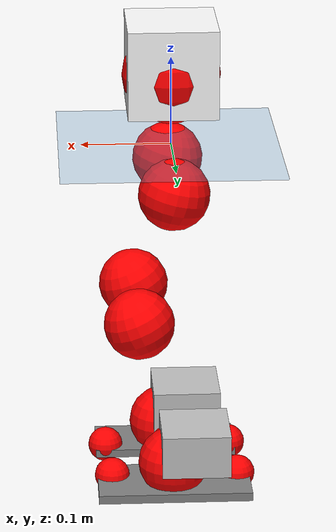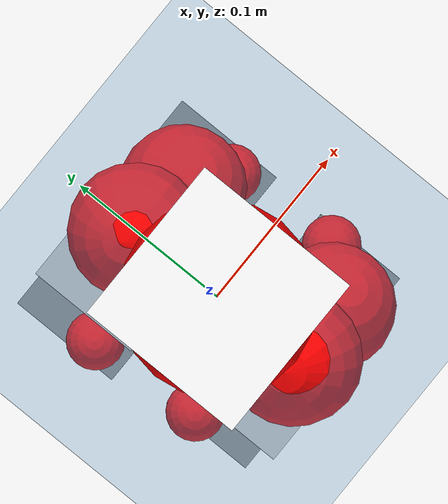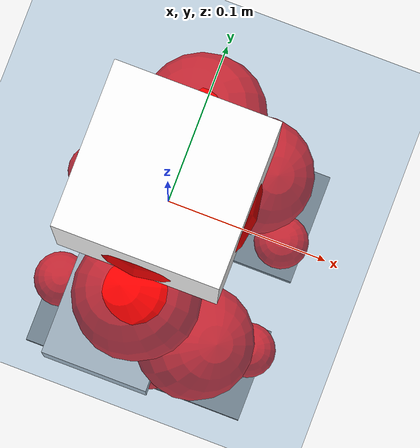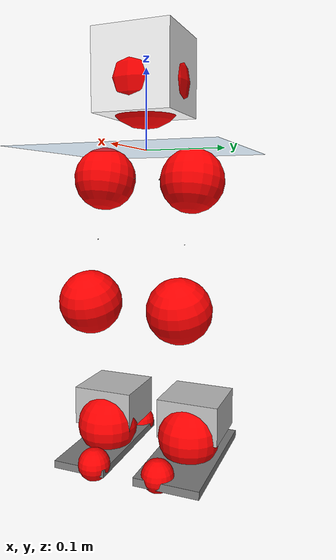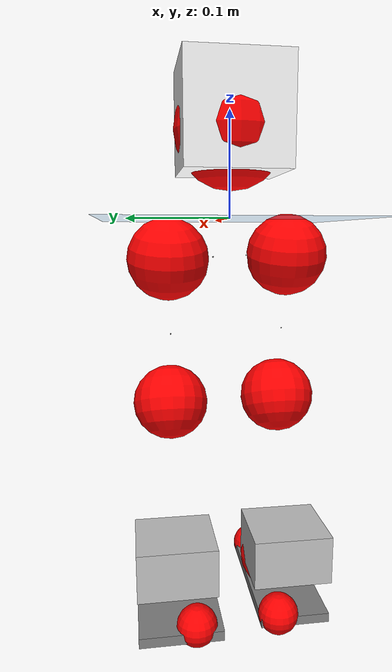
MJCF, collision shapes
<mujoco model="pi_12dof_release_v1">
  <compiler angle="radian" assetdir="assets" balanceinertia="true" inertiafromgeom="false"/>

  <option timestep="0.005" density="1.2" viscosity="2e-05"/>

  <size nkey="1"/>

  <visual>
    <quality shadowsize="8192"/>
    <map shadowclip="0.5"/>
  </visual>

  <default>
    <default class="/">
      <joint armature="0.01" damping="0.01" frictionloss="0.01"/>
      <geom contype="0" conaffinity="0" group="1" solref="-1000 -80"/>
      <site size="0.01 0.005 0.005" group="5"/>
      <general forcelimited="true" biastype="affine" gainprm="20" biasprm="0 -20 -0.5"/>
      <default class="foot">
        <geom size="0.0845 0.036 0.005" type="box" condim="6" group="4" priority="1" friction="0.9 0.2 0.2" solimp="0.015 1 0.005"/>
      </default>
      <default class="reward_collision_sphere">
        <geom group="5" rgba="1 0 0 1"/>
      </default>
    </default>
  </default>

  <asset>
    <texture type="skybox" colorspace="auto" name="//unnamed_texture_0" builtin="gradient" rgb1="0.95 0.95 0.95" rgb2="0.95 0.95 0.95" width="100" height="600"/>
    <texture type="2d" colorspace="auto" name="texplane" builtin="checker" rgb1="0.345 0.575 0.748" rgb2="0.345 0.575 0.748" markrgb="1 1 1" width="512" height="512"/>
    <material name="MatPlane" class="/" texture="texplane" texuniform="true" texrepeat="2 2" specular="0.9"/>
    <mesh name="baselink_1" class="/" file="baselink_1.STL"/>
    <mesh name="r_hip_pitch_link" class="/" file="r_hip_pitch_link.STL"/>
    <mesh name="r_hip_roll_link" class="/" file="r_hip_roll_link.STL"/>
    <mesh name="r_thigh_link" class="/" file="r_thigh_link.STL"/>
    <mesh name="r_calf_link" class="/" file="r_calf_link.STL"/>
    <mesh name="r_ankle_pitch_link" class="/" file="r_ankle_pitch_link.STL"/>
    <mesh name="r_ankle_roll_link" class="/" file="r_ankle_roll_link.STL"/>
    <mesh name="l_hip_pitch_link" class="/" file="l_hip_pitch_link.STL"/>
    <mesh name="l_hip_roll_link" class="/" file="l_hip_roll_link.STL"/>
    <mesh name="l_thigh_link" class="/" file="l_thigh_link.STL"/>
    <mesh name="l_calf_link" class="/" file="l_calf_link.STL"/>
    <mesh name="l_ankle_pitch_link" class="/" file="l_ankle_pitch_link.STL"/>
    <mesh name="l_ankle_roll_link" class="/" file="l_ankle_roll_link.STL"/>
  </asset>

  <worldbody>
    <geom name="floor" class="/" size="100 100 0.125" type="plane" group="0" material="MatPlane"/>
    <light name="toplight_shadow" class="/" pos="0 0 5" dir="0.0990148 0.0990148 -0.990148" type="directional" ambient="0.04 0.04 0.04" diffuse="0.55 0.55 0.55" specular="0.12 0.12 0.12"/>
    <light name="toplight_fill" class="/" pos="0 0 5" dir="0.0990148 0.0990148 -0.990148" type="directional" castshadow="false" ambient="0.04 0.04 0.04" diffuse="0.3 0.3 0.3" specular="0.08 0.08 0.08"/>
    <body name="trunk" pos="-0.000172404 -0.00108142 0.000545516" quat="1 8.57142e-06 2.67999e-05 -1.12797e-05">
      <inertial pos="0.001376 -0.00214427 0.0459898" quat="0.695888 0.0202711 0.00296725 0.717858" mass="2.12095" diaginertia="0.0134684 0.0026254 0.00809336"/>
      <joint name="//unnamed_joint_0" type="free"/>
      <geom name="//unnamed_geom_1" class="/" type="mesh" density="0" rgba="1 1 1 1" mesh="baselink_1"/>
      <geom name="//unnamed_geom_2" class="/" size="0.0497976 0.0497976 0.0497976" pos="0 0 0.091431" type="box" rgba="1 1 1 1"/>
      <geom name="//unnamed_geom_3" class="reward_collision_sphere" size="0.0547774" pos="0 0 0.0800021"/>
      <site name="imu" class="/" pos="0.00457712 -0.00148472 -0.00535438" size="0.00995953"/>
      <camera name="track" class="/" pos="0 -1.5612 0" quat="0.707107 0.707107 0 0" mode="trackcom"/>
      <camera name="ego_camera" class="/" pos="0.0798278 0 0.20572" quat="-0.5 -0.5 0.5 0.5"/>
      <body name="r_hip_pitch_link" pos="0.000110187 -0.0152721 -0.0354999" quat="0.99221 0.000329603 -0.124572 -0.000448521">
        <inertial pos="0.000677513 -0.0438425 -0.000233283" quat="-0.0212097 0.704902 -0.0288471 0.7084" mass="0.361966" diaginertia="0.000148116 2.80386e-05 0.000163157"/>
        <joint name="r_hip_pitch_joint" class="/" pos="0 0 0" axis="-0.00567492 -0.999976 0.00405386" stiffness="0.000589059" range="-1.74525 1.25619" armature="0.00980648" damping="0.0146351" frictionloss="0.0102862"/>
        <geom name="//unnamed_geom_4" class="/" type="mesh" density="0" rgba="0.75294 0.75294 0.75294 1" mesh="r_hip_pitch_link"/>
        <geom name="//unnamed_geom_5" class="/" size="0.000497976 0.000497976 0.000497976" type="box" rgba="0.75294 0.75294 0.75294 1"/>
        <body name="r_hip_roll_link" pos="0.00091416 -0.0409989 -0.000172272" quat="1 6.87628e-05 0.00023305 0.000310311">
          <inertial pos="-0.000117521 -0.000298927 -0.0695725" quat="0.708777 -0.0795839 -0.0895742 0.695182" mass="0.384369" diaginertia="0.000460849 8.06633e-05 0.000254057"/>
          <joint name="r_hip_roll_joint" class="/" pos="0 0 0" axis="-1 -7.64904e-05 -0.000398591" stiffness="0.00260762" range="-0.114413 0.52436" armature="0.00975008" damping="0.00610007" frictionloss="0.0097598"/>
          <geom name="//unnamed_geom_6" class="/" type="mesh" density="0" rgba="0.75294 0.75294 0.75294 1" mesh="r_hip_roll_link"/>
          <geom name="//unnamed_geom_7" class="/" size="0.000497976 0.000497976 0.000497976" type="box" rgba="0.75294 0.75294 0.75294 1"/>
          <geom name="//unnamed_geom_8" class="reward_collision_sphere" size="0.0398381"/>
          <body name="r_thigh_link" pos="0.000405898 -0.00135831 -0.0789839" quat="1 2.7819e-05 8.08147e-05 2.48101e-05">
            <inertial pos="0.00105355 0.000746409 -0.056612" quat="0.73737 0.675488 -0.000484834 0.000843775" mass="0.110888" diaginertia="0.000168869 2.82338e-05 0.000109882"/>
            <joint name="r_thigh_joint" class="/" pos="0 0 0" axis="0.00111027 -0.00261546 -0.999996" range="-0.312812 0.596644" armature="0.0104154" damping="0.0069546" frictionloss="0.0098407"/>
            <geom name="//unnamed_geom_9" class="/" type="mesh" density="0" rgba="0.75294 0.75294 0.75294 1" mesh="r_thigh_link"/>
            <geom name="//unnamed_geom_10" class="/" size="0.000497976 0.000497976 0.000497976" type="box" rgba="0.75294 0.75294 0.75294 1"/>
            <body name="r_calf_link" pos="-0.000526938 -0.000799021 -0.0802435" quat="0.947614 -5.5072e-05 0.319417 -1.14375e-05">
              <inertial pos="0.000629341 -0.00139936 -0.08037" quat="0.999991 -0.00222725 0.000701557 0.00347048" mass="0.791435" diaginertia="0.00489965 0.000989265 0.000347933"/>
              <joint name="r_calf_joint" class="/" pos="0 0 0" axis="3.1898e-05 -1 -0.0003054" range="-1.60131 0.637578" armature="0.0103003" damping="0.00979749" frictionloss="0.00963147"/>
              <geom name="//unnamed_geom_11" class="/" type="mesh" density="0" rgba="0.75294 0.75294 0.75294 1" mesh="r_calf_link"/>
              <geom name="//unnamed_geom_12" class="/" size="0.000497976 0.000497976 0.000497976" type="box" rgba="0.75294 0.75294 0.75294 1"/>
              <geom name="//unnamed_geom_13" class="reward_collision_sphere" size="0.0398381"/>
              <body name="r_ankle_pitch_link" pos="0.00259757 0.00285495 -0.1607" quat="0.979971 -5.12958e-05 -0.199138 -6.91203e-05">
                <inertial pos="0.00561541 0.000446697 -0.000714224" quat="0.00190545 0.707227 -0.00197032 0.706981" mass="0.178348" diaginertia="0.000430664 6.55104e-05 0.000240899"/>
                <joint name="r_ankle_pitch_joint" class="/" pos="0 0 0" axis="0.0103973 -0.999926 -0.00630691" range="-1.31296 0.543732" armature="0.0100559" damping="0.0108373" frictionloss="0.0104746"/>
                <geom name="//unnamed_geom_14" class="/" type="mesh" density="0" rgba="0.75294 0.75294 0.75294 1" mesh="r_ankle_pitch_link"/>
                <geom name="//unnamed_geom_15" class="/" size="0.0388422 0.0398381 0.0248988" type="box" rgba="0.75294 0.75294 0.75294 1"/>
                <body name="r_ankle_roll_link" pos="0.0789842 0.00205511 -0.000475388" quat="1 -0.000136544 0.000173015 -0.000852374">
                  <inertial pos="-0.0264283 -0.000173311 -0.016126" quat="0.559923 0.430689 0.434157 0.559018" mass="0.515298" diaginertia="0.0015352 0.000299179 0.000544959"/>
                  <joint name="r_ankle_roll_joint" class="/" pos="0 0 0" axis="-1 1.03265e-06 2.20936e-05" range="-0.196757 0.145449" armature="0.00990084" damping="0.0136938" frictionloss="0.0102504"/>
                  <geom name="//unnamed_geom_16" class="/" type="mesh" density="0" rgba="0.75294 0.75294 0.75294 1" mesh="r_ankle_roll_link"/>
                  <geom name="//unnamed_geom_17" class="/" type="mesh" rgba="0.75294 0.75294 0.75294 1" mesh="r_ankle_roll_link"/>
                  <geom name="right_foot" class="foot" size="0.0814959 0.0339823 0.00459568" pos="-0.0542829 0 -0.050287"/>
                  <geom name="//unnamed_geom_19" class="reward_collision_sphere" size="0.0398381" pos="-0.0532185 0 -0.0228577"/>
                  <geom name="//unnamed_geom_20" class="reward_collision_sphere" size="0.0199191" pos="0.0159656 0.015612 -0.0457155"/>
                  <geom name="//unnamed_geom_21" class="reward_collision_sphere" size="0.0199191" pos="-0.127724 0.015612 -0.0457155"/>
                  <site name="right_foot" class="foot" pos="-0.0542829 0 -0.050287" size="0.00995953"/>
                </body>
              </body>
            </body>
          </body>
        </body>
      </body>
      <body name="l_hip_pitch_link" pos="-0.000767327 0.0177342 -0.0370907" quat="0.992162 0.00043103 -0.124954 -0.000104449">
        <inertial pos="0.000555939 0.0404056 -0.00103819" quat="-0.0344268 0.704546 0.0296116 0.708204" mass="0.37606" diaginertia="0.000173616 3.01024e-05 0.00019398"/>
        <joint name="l_hip_pitch_joint" class="/" pos="0 0 0" axis="0.00130027 0.999998 0.00162604" stiffness="0.00209856" range="-1.24421 1.75518" armature="0.00980459" damping="0" frictionloss="0.0101404"/>
        <geom name="//unnamed_geom_22" class="/" type="mesh" density="0" rgba="0.75294 0.75294 0.75294 1" mesh="l_hip_pitch_link"/>
        <geom name="//unnamed_geom_23" class="/" size="0.000497976 0.000497976 0.000497976" type="box" rgba="0.75294 0.75294 0.75294 1"/>
        <body name="l_hip_roll_link" pos="0.000344956 0.0437954 -0.00210338" quat="1 -3.60865e-05 0.000151374 8.74268e-06">
          <inertial pos="-0.00102139 -0.000581491 -0.0720306" quat="0.698746 -0.0757203 -0.0773328 0.707135" mass="0.390521" diaginertia="0.000453566 7.84665e-05 0.000245656"/>
          <joint name="l_hip_roll_joint" class="/" pos="0 0 0" axis="-0.999995 0.00159877 0.00264733" range="-0.543905 0.112641" armature="0.0106188" damping="0.00600561" frictionloss="0.00944618"/>
          <geom name="//unnamed_geom_24" class="/" type="mesh" density="0" rgba="0.75294 0.75294 0.75294 1" mesh="l_hip_roll_link"/>
          <geom name="//unnamed_geom_25" class="/" size="0.000497976 0.000497976 0.000497976" type="box" rgba="0.75294 0.75294 0.75294 1"/>
          <geom name="//unnamed_geom_26" class="reward_collision_sphere" size="0.0398381"/>
          <body name="l_thigh_link" pos="-7.05413e-05 -0.0027674 -0.0789822" quat="1 -0.00012136 5.62712e-05 0.000252954">
            <inertial pos="0.000405415 -0.00156032 -0.0536081" quat="0.674759 0.738038 -0.000666136 0.000552313" mass="0.111199" diaginertia="0.000174218 2.73166e-05 0.000112625"/>
            <joint name="l_thigh_joint" class="/" pos="0 0 0" axis="-9.58809e-05 -0.000313667 -1" range="-0.593839 0.298334" armature="0.00993853" damping="0.00272667" frictionloss="0.00997647"/>
            <geom name="//unnamed_geom_27" class="/" type="mesh" density="0" rgba="0.75294 0.75294 0.75294 1" mesh="l_thigh_link"/>
            <geom name="//unnamed_geom_28" class="/" size="0.000497976 0.000497976 0.000497976" type="box" rgba="0.75294 0.75294 0.75294 1"/>
            <body name="l_calf_link" pos="-0.000711199 5.2667e-05 -0.0796648" quat="0.9477 -0.000399947 0.319163 0.0006376">
              <inertial pos="-0.000558534 0.00381055 -0.0808914" quat="0.999989 0.00226083 -0.00276897 0.00310273" mass="0.802194" diaginertia="0.00484998 0.000997799 0.000347972"/>
              <joint name="l_calf_joint" class="/" pos="0 0 0" axis="0.000717301 1 0.000192197" range="-0.659535 1.67252" armature="0.00947049" damping="0.00416169" frictionloss="0.00944531"/>
              <geom name="//unnamed_geom_29" class="/" type="mesh" density="0" rgba="0.75294 0.75294 0.75294 1" mesh="l_calf_link"/>
              <geom name="//unnamed_geom_30" class="/" size="0.000497976 0.000497976 0.000497976" type="box" rgba="0.75294 0.75294 0.75294 1"/>
              <geom name="//unnamed_geom_31" class="reward_collision_sphere" size="0.0398381"/>
              <body name="l_ankle_pitch_link" pos="-0.000243288 0.00227344 -0.160491" quat="0.980066 0.000275035 -0.19867 -0.000985323">
                <inertial pos="0.00536125 -0.00252815 -0.000487275" quat="-0.00157483 0.706408 0.000496738 0.707803" mass="0.174371" diaginertia="0.00042368 6.42642e-05 0.000233914"/>
                <joint name="l_ankle_pitch_joint" class="/" pos="0 0 0" axis="-0.00111787 0.999997 -0.0022331" stiffness="0.00165729" range="-0.534552 1.30941" armature="0.0102239" damping="0.0044515" frictionloss="0.00995409"/>
                <geom name="//unnamed_geom_32" class="/" type="mesh" density="0" rgba="0.75294 0.75294 0.75294 1" mesh="l_ankle_pitch_link"/>
                <geom name="//unnamed_geom_33" class="/" size="0.0388422 0.0398381 0.0248988" type="box" rgba="0.75294 0.75294 0.75294 1"/>
                <body name="l_ankle_roll_link" pos="0.0776719 -0.0013375 0.000508901" quat="1 -0.000175441 -0.000124363 -0.000339489">
                  <inertial pos="-0.0235306 -0.00023797 -0.0155416" quat="0.558189 0.428217 0.433502 0.563144" mass="0.508045" diaginertia="0.00157897 0.000301221 0.000548353"/>
                  <joint name="l_ankle_roll_joint" class="/" pos="0 0 0" axis="-0.999921 -0.0068747 0.0104839" range="-0.106387 0.135421" armature="0.0109673" damping="0.0199959" frictionloss="0.00915311"/>
                  <geom name="//unnamed_geom_34" class="/" type="mesh" density="0" rgba="0.75294 0.75294 0.75294 1" mesh="l_ankle_roll_link"/>
                  <geom name="//unnamed_geom_35" class="/" type="mesh" rgba="0.75294 0.75294 0.75294 1" mesh="l_ankle_roll_link"/>
                  <geom name="left_foot" class="foot" size="0.0870337 0.0405953 0.00497235" pos="-0.0542829 0 -0.050287"/>
                  <geom name="//unnamed_geom_37" class="reward_collision_sphere" size="0.0398381" pos="-0.0532185 0 -0.0228577"/>
                  <geom name="//unnamed_geom_38" class="reward_collision_sphere" size="0.0199191" pos="0.0159656 -0.015612 -0.0457155"/>
                  <geom name="//unnamed_geom_39" class="reward_collision_sphere" size="0.0199191" pos="-0.127724 -0.015612 -0.0457155"/>
                  <site name="left_foot" class="foot" pos="-0.0542829 0 -0.050287" size="0.00995953"/>
                </body>
              </body>
            </body>
          </body>
        </body>
      </body>
    </body>
  </worldbody>

  <contact>
    <pair class="/" geom1="floor" geom2="right_foot" name="//unnamed_contact_1"/>
    <pair class="/" geom1="floor" geom2="left_foot" name="//unnamed_contact_0"/>
  </contact>

  <actuator>
    <general name="r_hip_pitch_joint" class="/" joint="r_hip_pitch_joint" forcerange="-21.5436 21.5436" gainprm="20.0522" biasprm="0 -20.0522 -0.496915"/>
    <general name="r_hip_roll_joint" class="/" joint="r_hip_roll_joint" forcerange="-20.8777 20.8777" gainprm="20.0522" biasprm="0 -20.0522 -0.496915"/>
    <general name="r_thigh_joint" class="/" joint="r_thigh_joint" forcerange="-21.327 21.327" gainprm="20.0522" biasprm="0 -20.0522 -0.496915"/>
    <general name="r_calf_joint" class="/" joint="r_calf_joint" forcerange="-19.4685 19.4685" gainprm="20.0522" biasprm="0 -20.0522 -0.496915"/>
    <general name="r_ankle_pitch_joint" class="/" joint="r_ankle_pitch_joint" forcerange="-22.5555 22.5555" gainprm="20.0522" biasprm="0 -20.0522 -0.496915"/>
    <general name="r_ankle_roll_joint" class="/" joint="r_ankle_roll_joint" forcerange="-22.5697 22.5697" gainprm="20.0522" biasprm="0 -20.0522 -0.496915"/>
    <general name="l_hip_pitch_joint" class="/" joint="l_hip_pitch_joint" forcerange="-22.8625 22.8625" gainprm="20.0522" biasprm="0 -20.0522 -0.496915"/>
    <general name="l_hip_roll_joint" class="/" joint="l_hip_roll_joint" forcerange="-20.6314 20.6314" gainprm="20.0522" biasprm="0 -20.0522 -0.496915"/>
    <general name="l_thigh_joint" class="/" joint="l_thigh_joint" forcerange="-21.6875 21.6875" gainprm="20.0522" biasprm="0 -20.0522 -0.496915"/>
    <general name="l_calf_joint" class="/" joint="l_calf_joint" forcerange="-22.5851 22.5851" gainprm="20.0522" biasprm="0 -20.0522 -0.496915"/>
    <general name="l_ankle_pitch_joint" class="/" joint="l_ankle_pitch_joint" forcerange="-22.5731 22.5731" gainprm="20.0522" biasprm="0 -20.0522 -0.496915"/>
    <general name="l_ankle_roll_joint" class="/" joint="l_ankle_roll_joint" forcerange="-21.1264 21.1264" gainprm="20.0522" biasprm="0 -20.0522 -0.496915"/>
  </actuator>

  <sensor>
    <gyro site="imu" name="imu_angular_velocity"/>
    <velocimeter site="imu" name="imu_linear_velocity"/>
    <framelinvel objtype="site" objname="left_foot" name="left_foot_global_linear_velocity"/>
    <framelinvel objtype="site" objname="right_foot" name="right_foot_global_linear_velocity"/>
  </sensor>

  <keyframe>
    <key name="home" qpos="0 0 0.291 1 0 0 0 0.4 0 0 -0.8 0.4 0 -0.4 0 0 0.8 -0.4 0"/>
  </keyframe>
</mujoco>
